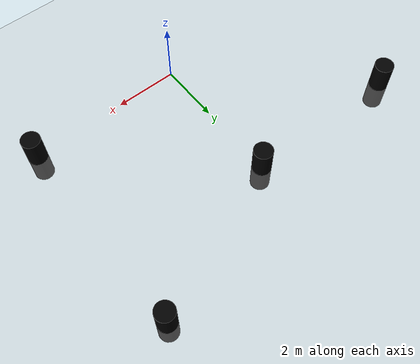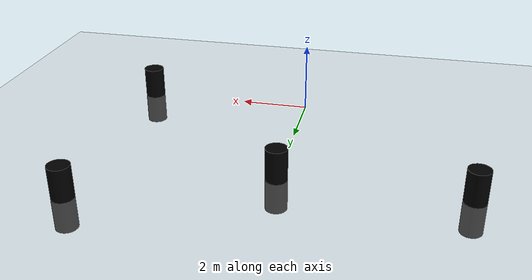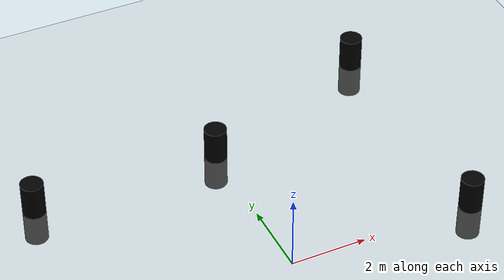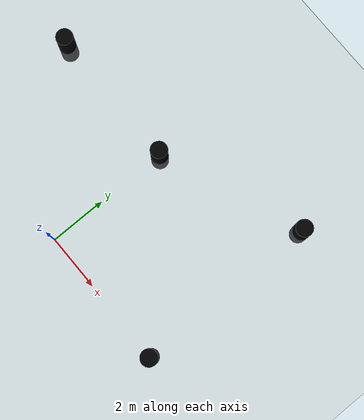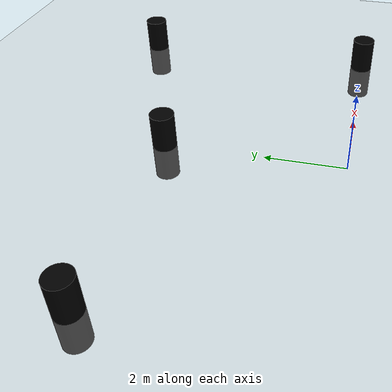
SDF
<sdf version="1.6">
 <world name="default">
  <include><uri>model://sun</uri></include>
  <include><uri>model://ground_plane</uri></include>
  <physics type="ode">
   <real_time_update_rate>1000.0</real_time_update_rate>
   <max_step_size>0.001</max_step_size>
   <real_time_factor>1</real_time_factor>
   <ode>
    <solver>
     <type>quick</type>
     <iters>80</iters>
     <precon_iters>0</precon_iters>
     <sor>1.400000</sor>
     <use_dynamic_moi_rescaling>1</use_dynamic_moi_rescaling>
    </solver>
   </ode>
  </physics>
  <model name="ped1_collision">
   <pose>5 0 0 0 0 1.571</pose>
   <static>false</static>
   <link name="body">
    <collision name="col">
     <geometry><cylinder><radius>0.3</radius><length>1.8</length></cylinder></geometry>
    </collision>
    <visual name="vis">
     <geometry><cylinder><radius>0.3</radius><length>1.8</length></cylinder></geometry>
     <material>
      <ambient>0 0 0 0</ambient>
      <diffuse>0 0 0 0</diffuse>
      <specular>0 0 0 0</specular>
      <emissive>0 0 0 0</emissive>
      <transparency>1.0</transparency>
     </material>
     <cast_shadows>false</cast_shadows>
    </visual>
   </link>
   <plugin name="follow_ped1" filename="libfollow_actor.so">
    <actor_name>ped1</actor_name>
    <link_name>body</link_name>
    <z_offset>0.0</z_offset>
   </plugin>
  </model>
  <model name="ped4_collision">
   <pose>5 6.5 0 0 0 -1.57</pose>
   <static>false</static>
   <link name="body">
    <collision name="col">
     <geometry><cylinder><radius>0.3</radius><length>1.8</length></cylinder></geometry>
    </collision>
    <visual name="vis">
     <geometry><cylinder><radius>0.3</radius><length>1.8</length></cylinder></geometry>
     <material>
      <ambient>0 0 0 0</ambient>
      <diffuse>0 0 0 0</diffuse>
      <specular>0 0 0 0</specular>
      <emissive>0 0 0 0</emissive>
      <transparency>1.0</transparency>
     </material>
     <cast_shadows>false</cast_shadows>
    </visual>
   </link>
   <plugin name="follow_ped4" filename="libfollow_actor.so">
    <actor_name>ped4</actor_name>
    <link_name>body</link_name>
    <z_offset>0.0</z_offset>
   </plugin>
  </model>
  <model name="ped3_collision">
   <pose>0 4.5 0 0 0 1.57</pose>
   <static>false</static>
   <link name="body">
    <collision name="col">
     <geometry><cylinder><radius>0.3</radius><length>1.8</length></cylinder></geometry>
    </collision>
    <visual name="vis">
     <geometry><cylinder><radius>0.3</radius><length>1.8</length></cylinder></geometry>
     <material>
      <ambient>0 0 0 0</ambient>
      <diffuse>0 0 0 0</diffuse>
      <specular>0 0 0 0</specular>
      <emissive>0 0 0 0</emissive>
      <transparency>1.0</transparency>
     </material>
     <cast_shadows>false</cast_shadows>
    </visual>
   </link>
   <plugin name="follow_ped3" filename="libfollow_actor.so">
    <actor_name>ped3</actor_name>
    <link_name>body</link_name>
    <z_offset>0.0</z_offset>
   </plugin>
  </model>
  <model name="ped2_collision">
   <pose>-5 4.5 0 0 0 1.190</pose>
   <static>false</static>
   <link name="body">
    <collision name="col">
     <geometry><cylinder><radius>0.3</radius><length>1.8</length></cylinder></geometry>
    </collision>
    <visual name="vis">
     <geometry><cylinder><radius>0.3</radius><length>1.8</length></cylinder></geometry>
     <material>
      <ambient>0 0 0 0</ambient>
      <diffuse>0 0 0 0</diffuse>
      <specular>0 0 0 0</specular>
      <emissive>0 0 0 0</emissive>
      <transparency>1.0</transparency>
     </material>
     <cast_shadows>false</cast_shadows>
    </visual>
   </link>
   <plugin name="follow_ped2" filename="libfollow_actor.so">
    <actor_name>ped2</actor_name>
    <link_name>body</link_name>
    <z_offset>0.0</z_offset>
   </plugin>
  </model>
 </world>
</sdf>
